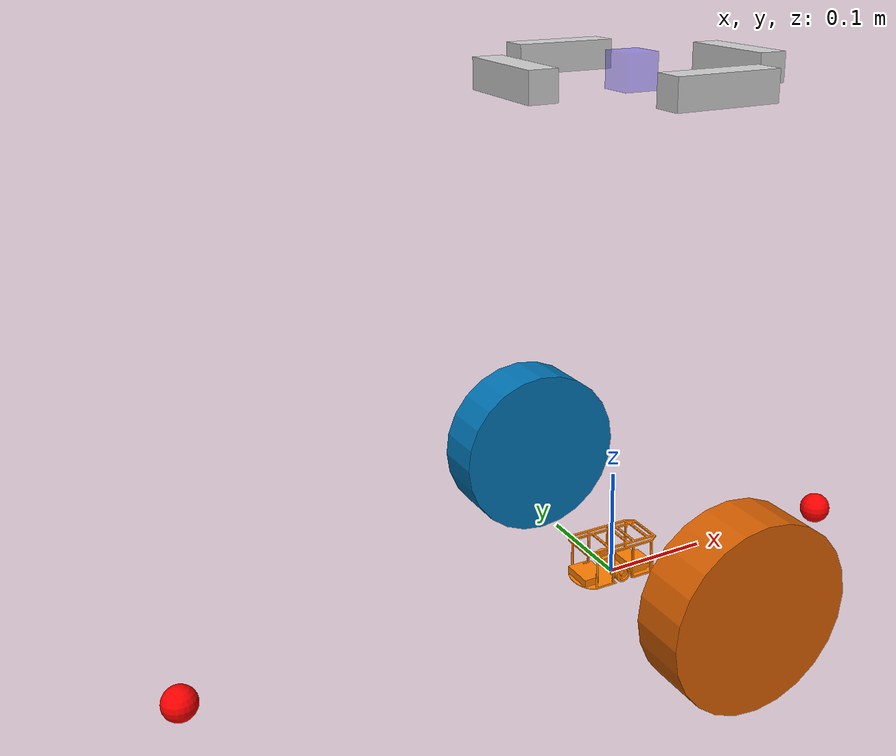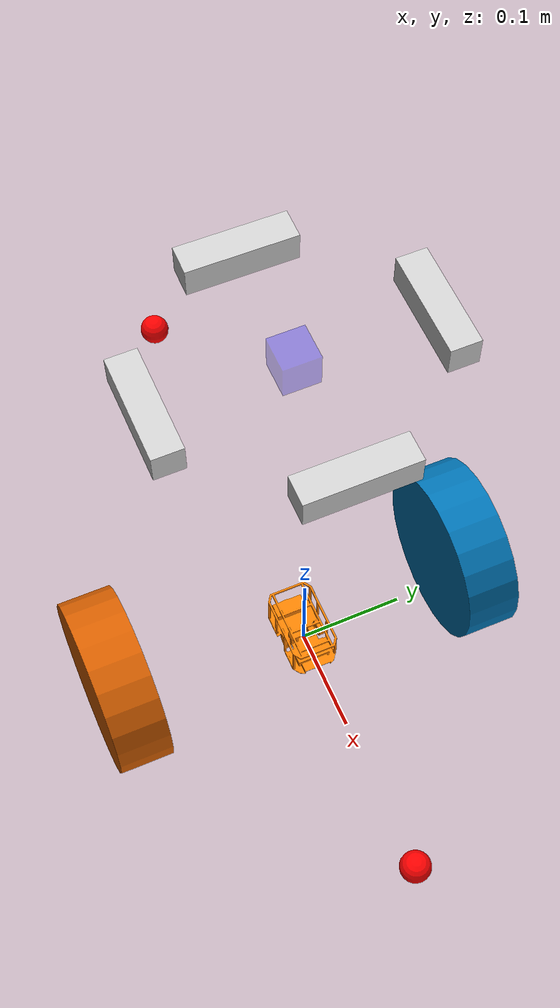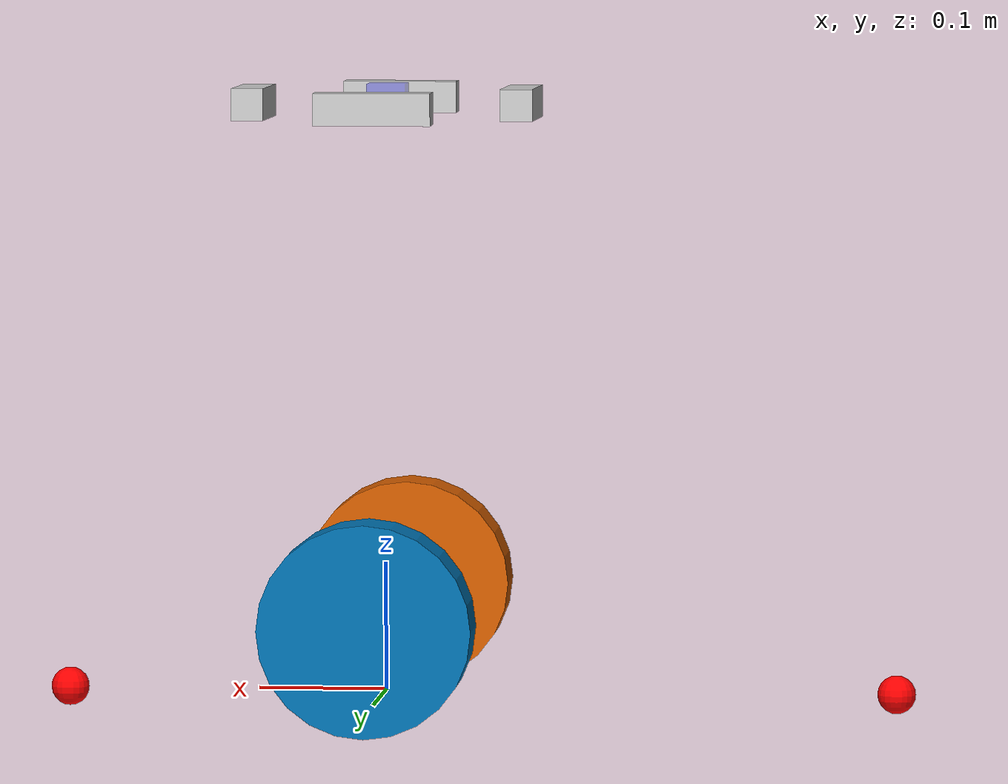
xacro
<?xml version="1.0"?>
<robot name="robot_3d" xmlns:xacro="http://www.ros.org/wiki/xacro" xmlns:gz="http://gazebosim.org/schema">
    <xacro:property name="M_PI" value="3.1415926535897931" />
    <xacro:property name="mesh_pkg" value="agv_robot_description"/>
    <xacro:property name="mesh_name" value="meshes/agv.stl"/>

    <xacro:arg name="robot_name" default="robot_3d"/>
    <xacro:arg name="prefix" default=""/>
    <xacro:arg name="use_gazebo" default="false"/>

    <!-- Include Gazebo plugins and camera macro -->
    <xacro:include filename="$(find agv_robot_description)/urdf/control/agv_robot.gazebo"/>
    <xacro:include filename="$(find agv_robot_description)/urdf/sensors/rgbd_camera.urdf.xacro"/>

    <!-- ==================== Base Link ==================== -->
    <link name="base_link">
        <visual>
            <material name="Grey">
                <color rgba="${255/255} ${127/255} ${2/255} 1.0"/>
            </material>
            <origin xyz="0 0 0" rpy="0 0 0"/>
            <geometry>
                <mesh filename="package://${mesh_pkg}/${mesh_name}" scale="0.1 0.1 0.1"/>
            </geometry>
        </visual>
        <collision>
            <origin xyz="0 0 0" rpy="0 0 0"/>
            <geometry>
                <mesh filename="package://${mesh_pkg}/${mesh_name}" scale="0.1 0.1 0.1"/>
            </geometry>
        </collision>
        <inertial>
            <mass value="50.0"/>
            <origin xyz="0 0 0" rpy="0 0 0"/>
            <inertia ixx="0.5" ixy="0.0" ixz="0.0" iyy="0.5" iyz="0.0" izz="0.5"/>
        </inertial>
    </link>

    <!-- ==================== Camera Mount ==================== -->
    <link name="camera_link">
        <visual>
            <geometry>
                <box size="0.03 0.03 0.03"/>
            </geometry>
            <material name="blue">
                <color rgba="0 0 1 0.3"/>
            </material>
        </visual>
        <inertial>
            <mass value="0.001"/>
            <inertia ixx="0.00001" ixy="0.0" ixz="0.0" iyy="0.00001" iyz="0.0" izz="0.00001"/>
        </inertial>
    </link>
    <joint name="camera_joint" type="fixed">
      <parent link="base_link"/>
      <child link="camera_link"/>
      <origin xyz="0.0 -0.012 0.46" rpy="0 0 0"/>
    </joint>

    <!-- ==================== Casters ==================== -->
    <link name="front_caster_link">
      <visual>
        <geometry><sphere radius="0.015"/></geometry>
        <material name="red"><color rgba="1 0 0 1"/></material>
      </visual>
      <collision>
        <geometry><sphere radius="0.015"/></geometry>
      </collision>
      <inertial>
        <mass value="0.00001"/>
        <inertia ixx="0.00001" ixy="0.0" ixz="0.0" iyy="0.00001" iyz="0.0" izz="0.00001"/>
      </inertial>
    </link>
    <joint name="front_caster_joint" type="fixed">
      <parent link="base_link"/>
      <child link="front_caster_link"/>
      <origin xyz="0.25 0 0" rpy="0 0 0"/>
    </joint>

    <link name="back_caster_link">
      <visual>
        <geometry><sphere radius="0.015"/></geometry>
        <material name="red"><color rgba="1 0 0 1"/></material>
      </visual>
      <collision>
        <geometry><sphere radius="0.015"/></geometry>
      </collision>
      <inertial>
        <mass value="0.00001"/>
        <inertia ixx="0.00001" ixy="0.0" ixz="0.0" iyy="0.00001" iyz="0.0" izz="0.00001"/>
      </inertial>
    </link>
    <joint name="back_caster_joint" type="fixed">
      <parent link="base_link"/>
      <child link="back_caster_link"/>
      <origin xyz="-0.4 0 0.0" rpy="0 0 0"/>
    </joint>

    <!-- ==================== Wheels ==================== -->
    <link name="left_wheel">
      <visual>
        <origin xyz="0 0 0" rpy="1.561 0 0"/>
        <geometry><cylinder length="0.05" radius="0.082"/></geometry>
      </visual>
      <collision>
        <origin xyz="0 0 0" rpy="1.561 0 0"/>
        <geometry><cylinder length="0.05" radius="0.082"/></geometry>
      </collision>
      <inertial>
        <mass value="0.5"/>
        <origin xyz="0 0 0" rpy="0 0 0"/>
        <inertia ixx="0.001" ixy="0.0" ixz="0.0" iyy="0.001" iyz="0.0" izz="0.001"/>
      </inertial>
    </link>
    <joint name="left_wheel_joint" type="continuous">
      <parent link="base_link"/>
      <child link="left_wheel"/>
      <origin xyz="0 0.155 0.066" rpy="0 0 0"/>
      <axis xyz="0 1 0"/>
    </joint>

    <link name="right_wheel">
      <visual>
        <origin xyz="0 0 0" rpy="1.561 0 0"/>
        <geometry><cylinder length="0.05" radius="0.082"/></geometry>
      </visual>
      <collision>
        <origin xyz="0 0 0" rpy="1.561 0 0"/>
        <geometry><cylinder length="0.05" radius="0.082"/></geometry>
      </collision>
      <inertial>
        <mass value="0.5"/>
        <origin xyz="0 0 0" rpy="0 0 0"/>
        <inertia ixx="0.001" ixy="0.0" ixz="0.0" iyy="0.001" iyz="0.0" izz="0.001"/>
      </inertial>
    </link>
    <joint name="right_wheel_joint" type="continuous">
      <parent link="base_link"/>
      <child link="right_wheel"/>
      <origin xyz="0 -0.188 0.066" rpy="0 0 0"/>
      <axis xyz="0 1 0"/>
    </joint>

    <!-- ==================== 4 RGBD Cameras ==================== -->
    <xacro:rgbd_camera
      prefix="$(arg prefix)"
      camera_name="cam_front"
      xyz_offset="0.105 0.0 0.0"
      rpy_offset="0 0 0"/>

    <xacro:rgbd_camera
      prefix="$(arg prefix)"
      camera_name="cam_back"
      xyz_offset="-0.105 0.0 0.0"
      rpy_offset="0 0 3.13"/>

    <xacro:rgbd_camera
      prefix="$(arg prefix)"
      camera_name="cam_left"
      xyz_offset="0 -0.112 0.0"
      rpy_offset="0 0 -1.57"/>

    <xacro:rgbd_camera
      prefix="$(arg prefix)"
      camera_name="cam_right"
      xyz_offset="0 0.112 0.0"
      rpy_offset="0 0 1.57"/>

</robot>

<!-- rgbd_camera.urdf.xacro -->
<robot xmlns:xacro="http://www.ros.org/wiki/xacro">
  <xacro:property name="M_PI" value="3.1415926535897931" />

  <xacro:macro name="rgbd_camera" params="
    prefix:=''
    camera_name:='cam'
    parent:='camera_link'
    xyz_offset:='0.105 0 0.05'
    rpy_offset:='0 0 0'
    optical_rpy_offset:='${-M_PI/2} 0 ${-M_PI/2}'
    horizontal_fov:=1.5184
    image_width:=424
    image_height:=240
    clip_near:=0.05
    clip_far:=10.5
    update_rate:=2
    always_on:=1
    visualize:=true">

    <!-- Camera physical link -->
    <link name="${prefix}${camera_name}_link">
      <visual>
        <origin xyz="0 0 0" rpy="0 0 0"/>
        <geometry>
          <box size="0.025 0.09 0.025"/>
        </geometry>
        <material name="cam_aluminum">
          <color rgba="0.8 0.8 0.8 1"/>
        </material>
      </visual>
      <inertial>
        <mass value="0.072" />
        <origin xyz="0 0 0" rpy="0 0 0"/>
        <inertia ixx="0.003881243" ixy="0.0" ixz="0.0"
                 iyy="0.000498940" iyz="0.0" izz="0.003879257" />
      </inertial>
    </link>

    <joint name="${prefix}${camera_name}_joint" type="fixed">
      <parent link="${prefix}${parent}"/>
      <child link="${prefix}${camera_name}_link" />
      <origin xyz="${xyz_offset}" rpy="${rpy_offset}"/>
    </joint>

    <!-- Depth frame -->
    <link name="${prefix}${camera_name}_depth_frame"/>
    <joint name="${prefix}${camera_name}_depth_joint" type="fixed">
      <origin xyz="0 0 0" rpy="0 0 0"/>
      <parent link="${prefix}${camera_name}_link"/>
      <child link="${prefix}${camera_name}_depth_frame" />
    </joint>

    <!-- Depth optical frame -->
    <link name="${prefix}${camera_name}_depth_optical_frame"/>
    <joint name="${prefix}${camera_name}_depth_optical_joint" type="fixed">
      <origin xyz="0 0 0" rpy="${optical_rpy_offset}" />
      <parent link="${prefix}${camera_name}_depth_frame" />
      <child link="${prefix}${camera_name}_depth_optical_frame" />
    </joint>

    <!-- Color frame -->
    <link name="${prefix}${camera_name}_color_frame"/>
    <joint name="${prefix}${camera_name}_color_joint" type="fixed">
      <origin xyz="0 0.015 0" rpy="0 0 0" />
      <parent link="${prefix}${camera_name}_link" />
      <child link="${prefix}${camera_name}_color_frame" />
    </joint>

    <!-- Color optical frame -->
    <link name="${prefix}${camera_name}_color_optical_frame"/>
    <joint name="${prefix}${camera_name}_color_optical_joint" type="fixed">
      <origin xyz="0 0 0" rpy="${optical_rpy_offset}" />
      <parent link="${prefix}${camera_name}_color_frame" />
      <child link="${prefix}${camera_name}_color_optical_frame" />
    </joint>

    <!-- Gazebo RGBD camera sensor -->
    <gazebo reference="${prefix}${camera_name}_link">
      <sensor name="${prefix}${camera_name}" type="rgbd_camera">
        <camera>
          <horizontal_fov>${horizontal_fov}</horizontal_fov>
          <image>
            <width>${image_width}</width>
            <height>${image_height}</height>
          </image>
          <clip>
            <near>${clip_near}</near>
            <far>${clip_far}</far>
          </clip>
        </camera>
        <always_on>${always_on}</always_on>
        <gz_frame_id>${prefix}${camera_name}_link</gz_frame_id>
        <topic>${camera_name}</topic>
        <update_rate>${update_rate}</update_rate>
        <visualize>${visualize}</visualize>
      </sensor>
    </gazebo>
  </xacro:macro>
</robot>
